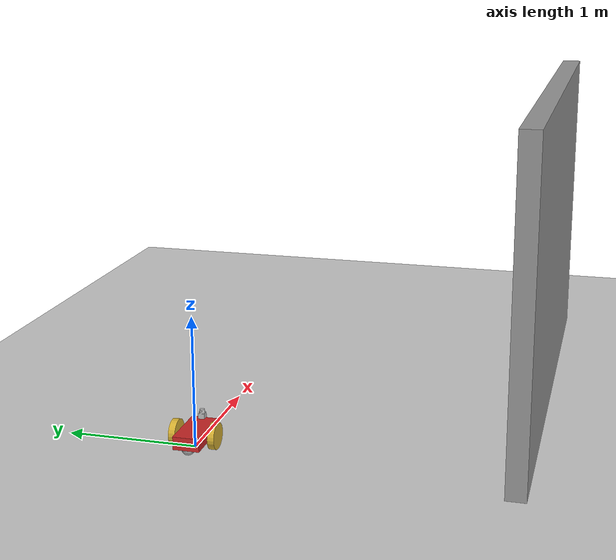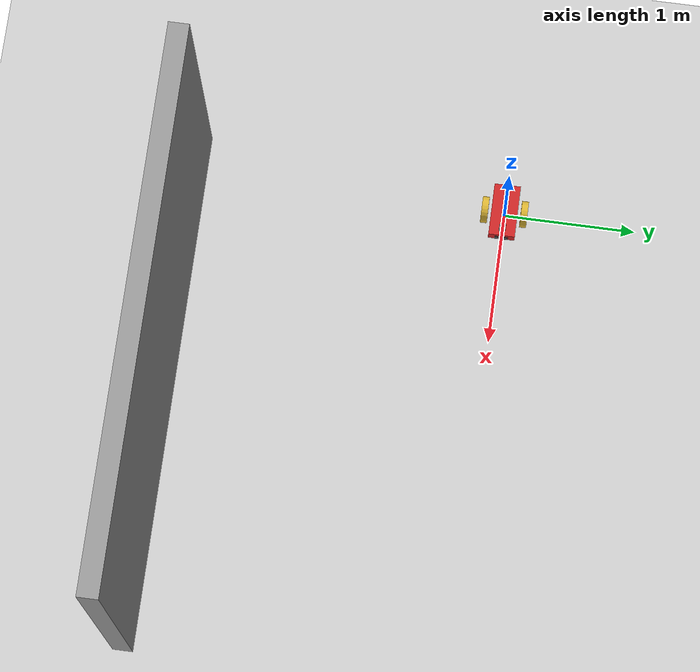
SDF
<sdf version="1.6">
 <world name="default">
  <light name="sun" type="directional">
   <pose>0 0 10 0 -0 0</pose>
   <diffuse>0.8 0.8 0.8 1</diffuse>
   <specular>0.2 0.2 0.2 1</specular>
   <attenuation>
    <range>1000</range>
    <constant>0.9</constant>
    <linear>0.01</linear>
    <quadratic>0.001</quadratic>
   </attenuation>
   <direction>-0.5 0.1 -0.9</direction>
  </light>
  <model name="ground_plane">
   <static>1</static>
   <link name="link">
    <collision name="collision">
     <geometry><plane><normal>0 0 1</normal><size>100 100</size></plane></geometry>
     <surface>
      <contact><collide_bitmask>65535</collide_bitmask></contact>
      <friction><ode><mu>100</mu><mu2>50</mu2></ode></friction>
     </surface>
    </collision>
    <visual name="visual">
     <cast_shadows>0</cast_shadows>
     <geometry><plane><normal>0 0 1</normal><size>100 100</size></plane></geometry>
     <material>
      <script><uri>file://media/materials/scripts/gazebo.material</uri><name>Gazebo/Grey</name></script>
     </material>
    </visual>
   </link>
  </model>
  <gravity>0 0 -9.8</gravity>
  <magnetic_field>6e-06 2.3e-05 -4.2e-05</magnetic_field>
  <atmosphere type="adiabatic"/>
  <physics name="default_physics" default="0" type="ode">
   <max_step_size>0.001</max_step_size>
   <real_time_factor>1</real_time_factor>
   <real_time_update_rate>1000</real_time_update_rate>
  </physics>
  <scene><ambient>0.4 0.4 0.4 1</ambient><background>0.7 0.7 0.7 1</background><shadows>1</shadows></scene>
  <audio><device>default</device></audio>
  <spherical_coordinates>
   <surface_model>EARTH_WGS84</surface_model>
   <latitude_deg>0</latitude_deg>
   <longitude_deg>0</longitude_deg>
   <elevation>0</elevation>
   <heading_deg>0</heading_deg>
  </spherical_coordinates>
  <model name="my_robot">
   <link name="robot_footprint">
    <inertial>
     <pose>0.001325 0 0 0 -0 0</pose>
     <mass>15.1</mass>
     <inertia>
      <ixx>0.100002</ixx>
      <ixy>0</ixy>
      <ixz>-1.48675e-07</ixz>
      <iyy>0.103976</iyy>
      <iyz>0</iyz>
      <izz>0.103976</izz>
     </inertia>
    </inertial>
    <collision name="robot_footprint_fixed_joint_lump__collision_collision">
     <geometry><box><size>0.4 0.2 0.1</size></box></geometry>
    </collision>
    <collision name="robot_footprint_fixed_joint_lump__back_caster_collision_collision_1">
     <pose>-0.15 0 -0.05 0 -0 0</pose>
     <geometry><sphere><radius>0.0499</radius></sphere></geometry>
    </collision>
    <collision name="robot_footprint_fixed_joint_lump__front_caster_collision_collision_2">
     <pose>0.15 0 -0.05 0 -0 0</pose>
     <geometry><sphere><radius>0.0499</radius></sphere></geometry>
    </collision>
    <collision name="robot_footprint_fixed_joint_lump__camera_collision_collision_3">
     <pose>0.2 0 0 0 -0 0</pose>
     <geometry><box><size>0.05 0.05 0.05</size></box></geometry>
    </collision>
    <collision name="robot_footprint_fixed_joint_lump__hokuyo_collision_collision_4">
     <pose>0.15 0 0.1 0 -0 0</pose>
     <geometry><box><size>0.1 0.1 0.1</size></box></geometry>
    </collision>
    <visual name="robot_footprint_fixed_joint_lump__chassis_visual_visual">
     <geometry><box><size>0.4 0.2 0.1</size></box></geometry>
     <material>
      <script><name>Gazebo/Red</name><uri>file://media/materials/scripts/gazebo.material</uri></script>
     </material>
    </visual>
    <visual name="robot_footprint_fixed_joint_lump__back_caster_visual_visual_1">
     <pose>-0.15 0 -0.05 0 -0 0</pose>
     <geometry><sphere><radius>0.05</radius></sphere></geometry>
    </visual>
    <visual name="robot_footprint_fixed_joint_lump__front_caster_visual_visual_2">
     <pose>0.15 0 -0.05 0 -0 0</pose>
     <geometry><sphere><radius>0.05</radius></sphere></geometry>
    </visual>
    <visual name="robot_footprint_fixed_joint_lump__camera_visual_visual_3">
     <pose>0.2 0 0 0 -0 0</pose>
     <geometry><box><size>0.025 0.1 0.025</size></box></geometry>
     <material>
      <script><name>Gazebo/Black</name><uri>file://media/materials/scripts/gazebo.material</uri></script>
     </material>
    </visual>
    <visual name="robot_footprint_fixed_joint_lump__hokuyo_visual_visual_4">
     <pose>0.15 0 0.1 0 -0 0</pose>
     <geometry>
      <mesh><scale>1 1 1</scale><uri>/home/goldenboy/catkin_ws/src/my_robot/meshes/hokuyo.dae</uri></mesh>
     </geometry>
     <material><script><uri>__default__</uri><name>__default__</name></script></material>
    </visual>
    <sensor name="camera1" type="camera">
     <update_rate>30</update_rate>
     <camera name="head">
      <horizontal_fov>1.39626</horizontal_fov>
      <image><width>800</width><height>800</height><format>R8G8B8</format></image>
      <clip><near>0.02</near><far>300</far></clip>
     </camera>
     <plugin name="camera_controller" filename="libgazebo_ros_camera.so">
      <alwaysOn>1</alwaysOn>
      <updateRate>0.0</updateRate>
      <cameraName>camera</cameraName>
      <imageTopicName>rgb/image_raw</imageTopicName>
      <cameraInfoTopicName>rgb/camera_info</cameraInfoTopicName>
      <frameName>camera</frameName>
      <hackBaseline>0.07</hackBaseline>
      <distortionK1>0.0</distortionK1>
      <distortionK2>0.0</distortionK2>
      <distortionK3>0.0</distortionK3>
      <distortionT1>0.0</distortionT1>
      <distortionT2>0.0</distortionT2>
      <robotNamespace>/</robotNamespace>
     </plugin>
     <pose>0.2 0 0 0 -0 0</pose>
    </sensor>
    <sensor name="head_hokuyo_sensor" type="ray">
     <visualize>0</visualize>
     <update_rate>40</update_rate>
     <ray>
      <scan>
       <horizontal>
        <samples>720</samples>
        <resolution>1</resolution>
        <min_angle>-1.5708</min_angle>
        <max_angle>1.5708</max_angle>
       </horizontal>
       <vertical><samples>1</samples><min_angle>0</min_angle><max_angle>0</max_angle></vertical>
      </scan>
      <range><min>0.1</min><max>30</max><resolution>0.01</resolution></range>
      <noise><type>gaussian</type><mean>0</mean><stddev>0.01</stddev></noise>
     </ray>
     <plugin name="gazebo_ros_head_hokuyo_controller" filename="libgazebo_ros_laser.so">
      <topicName>/scan</topicName>
      <frameName>hokuyo</frameName>
      <robotNamespace>/</robotNamespace>
     </plugin>
     <pose>0.15 0 0.1 0 -0 0</pose>
    </sensor>
   </link>
   <link name="left_wheel">
    <pose>0 0.15 0 0 -0 0</pose>
    <inertial>
     <mass>5</mass>
     <inertia><ixx>0.1</ixx><ixy>0</ixy><ixz>0</ixz><iyy>0.1</iyy><iyz>0</iyz><izz>0.1</izz></inertia>
    </inertial>
    <collision name="left_wheel_collision_collision">
     <pose>0 0 0 3.14159 1.57079 -1.57089</pose>
     <geometry><cylinder><length>0.05</length><radius>0.1</radius></cylinder></geometry>
    </collision>
    <visual name="left_wheel_visual_visual">
     <pose>0 0 0 3.14159 1.57079 -1.57089</pose>
     <geometry><cylinder><length>0.05</length><radius>0.1</radius></cylinder></geometry>
     <material>
      <script><name>Gazebo/Gold</name><uri>file://media/materials/scripts/gazebo.material</uri></script>
     </material>
    </visual>
   </link>
   <joint name="left_wheel_hinge" type="revolute">
    <child>left_wheel</child>
    <parent>robot_footprint</parent>
    <axis>
     <xyz>0 1 0</xyz>
     <limit><lower>-1e+16</lower><upper>1e+16</upper></limit>
     <dynamics>
      <damping>1</damping>
      <friction>1</friction>
      <spring_reference>0</spring_reference>
      <spring_stiffness>0</spring_stiffness>
     </dynamics>
     <use_parent_model_frame>1</use_parent_model_frame>
    </axis>
   </joint>
   <link name="right_wheel">
    <pose>0 -0.15 0 0 -0 0</pose>
    <inertial>
     <mass>5</mass>
     <inertia><ixx>0.1</ixx><ixy>0</ixy><ixz>0</ixz><iyy>0.1</iyy><iyz>0</iyz><izz>0.1</izz></inertia>
    </inertial>
    <collision name="right_wheel_collision_collision">
     <pose>0 0 0 3.14159 1.57079 -1.57089</pose>
     <geometry><cylinder><length>0.05</length><radius>0.1</radius></cylinder></geometry>
    </collision>
    <visual name="right_wheel_visual_visual">
     <pose>0 0 0 3.14159 1.57079 -1.57089</pose>
     <geometry><cylinder><length>0.05</length><radius>0.1</radius></cylinder></geometry>
     <material>
      <script><name>Gazebo/Gold</name><uri>file://media/materials/scripts/gazebo.material</uri></script>
     </material>
    </visual>
   </link>
   <joint name="right_wheel_hinge" type="revolute">
    <child>right_wheel</child>
    <parent>robot_footprint</parent>
    <axis>
     <xyz>0 1 0</xyz>
     <limit><lower>-1e+16</lower><upper>1e+16</upper></limit>
     <dynamics>
      <damping>1</damping>
      <friction>1</friction>
      <spring_reference>0</spring_reference>
      <spring_stiffness>0</spring_stiffness>
     </dynamics>
     <use_parent_model_frame>1</use_parent_model_frame>
    </axis>
   </joint>
   <static>0</static>
   <plugin name="differential_drive_controller" filename="libgazebo_ros_diff_drive.so">
    <legacyMode>0</legacyMode>
    <alwaysOn>1</alwaysOn>
    <updateRate>10</updateRate>
    <leftJoint>left_wheel_hinge</leftJoint>
    <rightJoint>right_wheel_hinge</rightJoint>
    <wheelSeparation>0.4</wheelSeparation>
    <wheelDiameter>0.2</wheelDiameter>
    <torque>10</torque>
    <commandTopic>cmd_vel</commandTopic>
    <odometryTopic>odom</odometryTopic>
    <odometryFrame>odom</odometryFrame>
    <robotBaseFrame>robot_footprint</robotBaseFrame>
    <publishWheelTF>0</publishWheelTF>
    <publishWheelJointState>0</publishWheelJointState>
    <rosDebugLevel>na</rosDebugLevel>
    <wheelAcceleration>0</wheelAcceleration>
    <wheelTorque>5</wheelTorque>
    <odometrySource>world</odometrySource>
    <publishTf>1</publishTf>
    <publishOdomTF>1</publishOdomTF>
    <robotNamespace>/</robotNamespace>
   </plugin>
   <pose>6.9e-05 -0.002693 0.099998 1.2e-05 0.000554 0.000687</pose>
  </model>
  <model name="building2">
   <pose>1.67913 -2.37853 0 0 -0 0</pose>
   <link name="Wall_0">
    <collision name="Wall_0_Collision">
     <geometry><box><size>4 0.15 2.5</size></box></geometry>
     <pose>0 0 1.25 0 -0 0</pose>
    </collision>
    <visual name="Wall_0_Visual">
     <pose>0 0 1.25 0 -0 0</pose>
     <geometry><box><size>4 0.15 2.5</size></box></geometry>
     <material>
      <script><uri>file://media/materials/scripts/gazebo.material</uri><name>Gazebo/Grey</name></script>
      <ambient>1 1 1 1</ambient>
     </material>
     <meta><layer>0</layer></meta>
    </visual>
   </link>
   <static>1</static>
  </model>
 </world>
</sdf>
